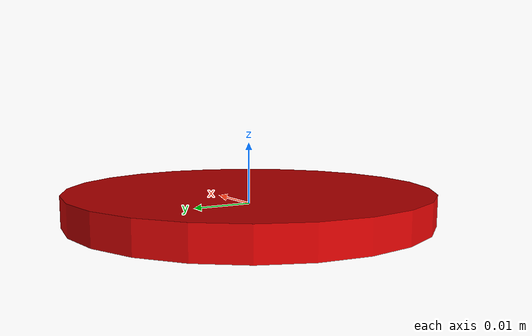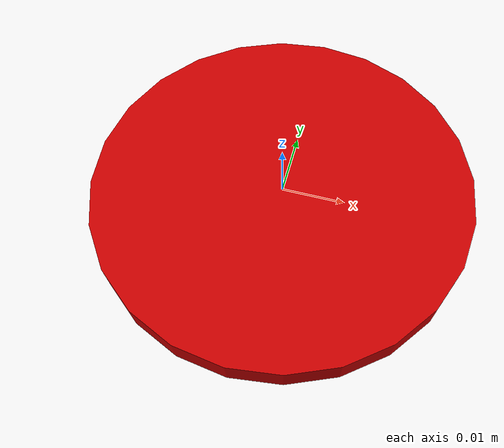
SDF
<?xml version="1.0" ?>
<sdf version="1.9">
  <model name="payload_cylinder">

    <link name="payload_link">
      <self_collide>true</self_collide>
      <inertial>
        <mass>0.1</mass>
        <inertia>
          <ixx>0.0001</ixx><ixy>0</ixy><ixz>0</ixz>
          <iyy>0.0001</iyy><iyz>0</iyz>
          <izz>0.0001</izz>
        </inertia>
      </inertial>

      <visual name="payload_visual">
        <geometry>
           <cylinder><radius>0.03</radius><length>0.005</length></cylinder>
        </geometry>
        <material>
          <ambient>0.8 0.0 0.0 1</ambient>
          <diffuse>0.8 0.0 0.0 1</diffuse>
        </material>
      </visual>

      <collision name="payload_collision">
        <geometry>
           <cylinder><radius>0.029</radius><length>0.005</length></cylinder>
        </geometry>
        <surface>
          <contact>
            <ode>
              <kp>100000.0</kp>
              <kd>100.0</kd>
              <max_vel>0.0</max_vel>
              <min_depth>0.002</min_depth>
            </ode>
          </contact>
        </surface>
      </collision>
    </link>

    <plugin name="gz::sim::systems::OdometryPublisher"
            filename="gz-sim-odometry-publisher-system">
      <odom_frame>world</odom_frame>
      <robot_base_frame>payload_cylinder</robot_base_frame>
      <odom_publish_frequency>10</odom_publish_frequency>
    </plugin>
  </model>
</sdf>
